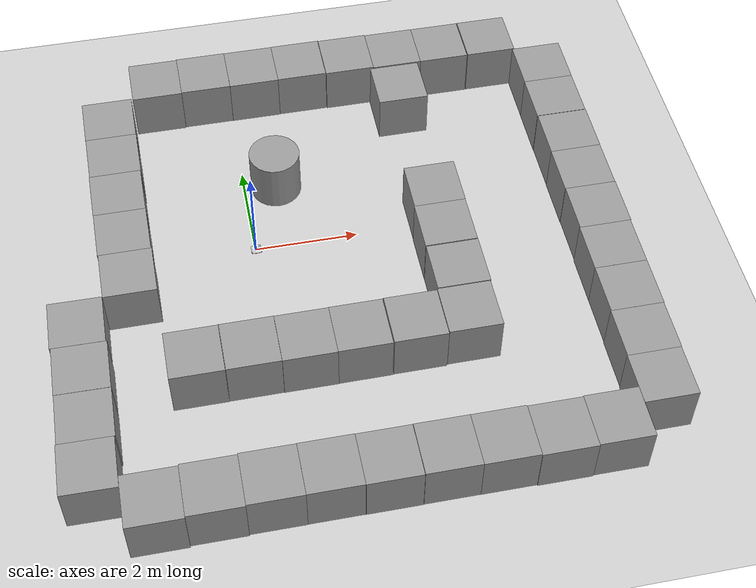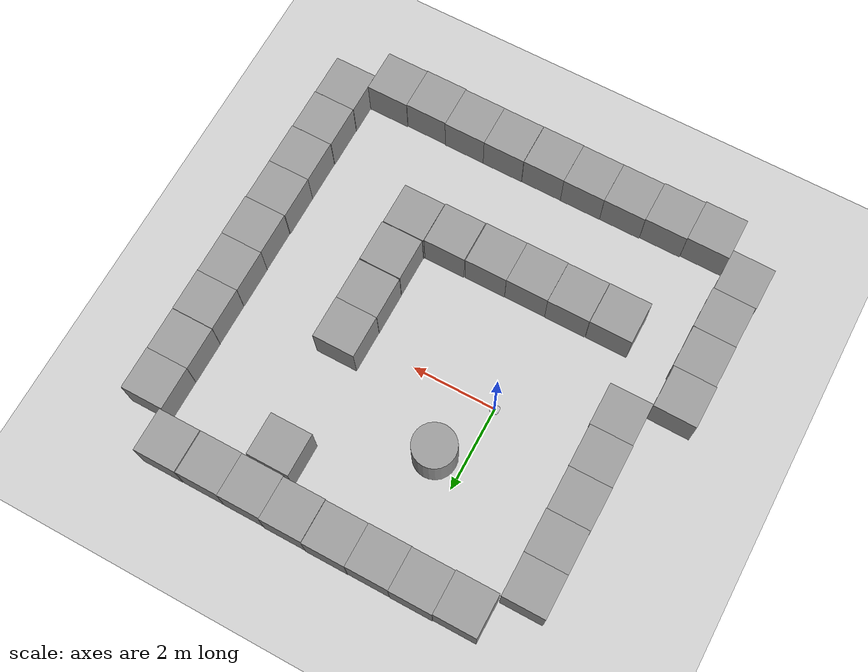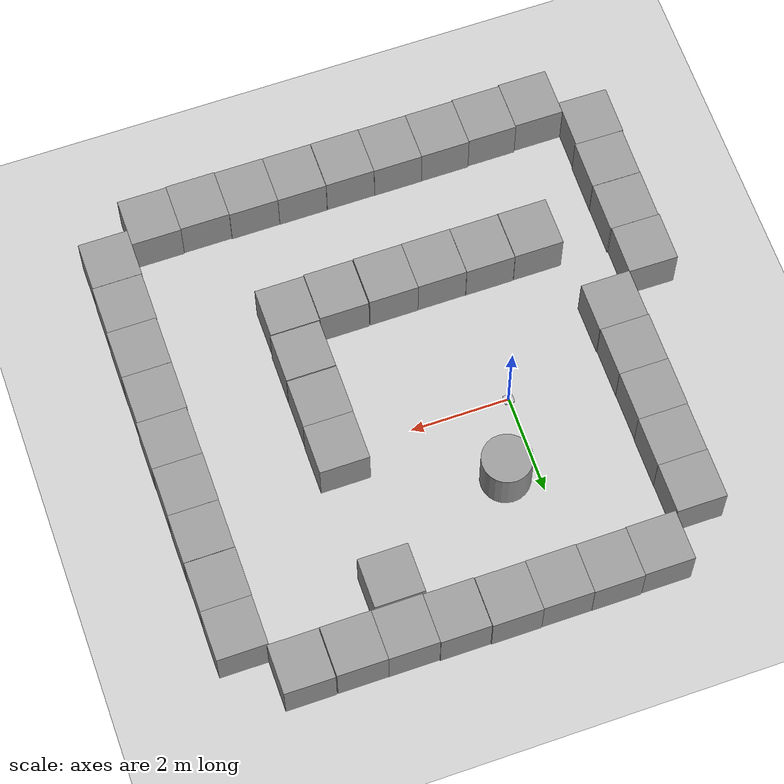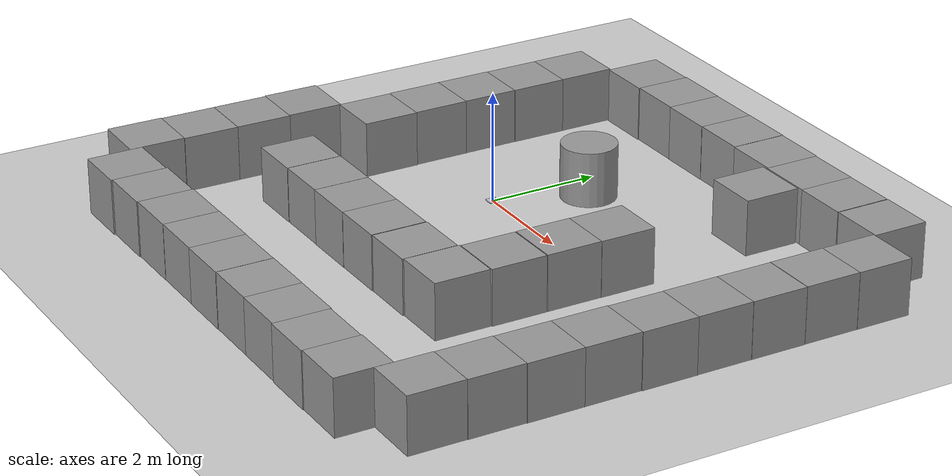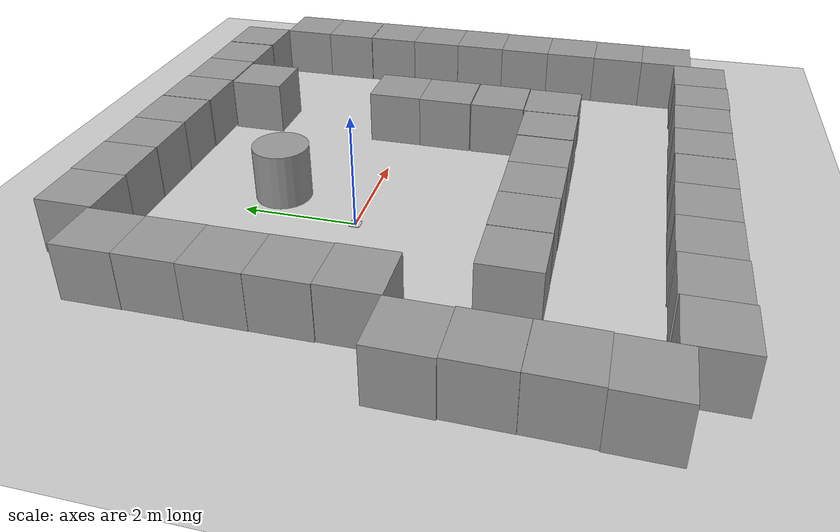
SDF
<sdf version="1.7">
 <world name="default">
  <light name="sun" type="directional">
   <pose>0 0 10 0 -0 0</pose>
   <diffuse>0.8 0.8 0.8 1</diffuse>
   <specular>0.2 0.2 0.2 1</specular>
   <attenuation>
    <range>1000</range>
    <constant>0.9</constant>
    <linear>0.01</linear>
    <quadratic>0.001</quadratic>
   </attenuation>
   <direction>-0.5 0.1 -0.9</direction>
   <spot><inner_angle>0</inner_angle><outer_angle>0</outer_angle><falloff>0</falloff></spot>
  </light>
  <model name="ground_plane">
   <static>1</static>
   <link name="link">
    <collision name="collision">
     <geometry><plane><normal>0 0 1</normal><size>100 100</size></plane></geometry>
     <surface>
      <contact><collide_bitmask>65535</collide_bitmask></contact>
      <friction><ode><mu>100</mu><mu2>50</mu2></ode></friction>
     </surface>
    </collision>
    <visual name="visual">
     <cast_shadows>0</cast_shadows>
     <geometry><plane><normal>0 0 1</normal><size>100 100</size></plane></geometry>
     <material>
      <script><uri>file://media/materials/scripts/gazebo.material</uri><name>Gazebo/Grey</name></script>
     </material>
    </visual>
   </link>
  </model>
  <gravity>0 0 -9.8</gravity>
  <magnetic_field>6e-06 2.3e-05 -4.2e-05</magnetic_field>
  <atmosphere type="adiabatic"/>
  <physics type="ode">
   <max_step_size>0.001</max_step_size>
   <real_time_factor>1</real_time_factor>
   <real_time_update_rate>1000</real_time_update_rate>
  </physics>
  <scene><ambient>0.4 0.4 0.4 1</ambient><background>0.7 0.7 0.7 1</background><shadows>1</shadows></scene>
  <spherical_coordinates>
   <surface_model>EARTH_WGS84</surface_model>
   <latitude_deg>0</latitude_deg>
   <longitude_deg>0</longitude_deg>
   <elevation>0</elevation>
   <heading_deg>0</heading_deg>
  </spherical_coordinates>
  <model name="fwomni">
   <link name="base_footprint">
    <inertial>
     <pose>0.002014 -0 0.005878 0 -0 0</pose>
     <mass>3.04689</mass>
     <inertia>
      <ixx>0.00914958</ixx>
      <ixy>-2.00784e-20</ixy>
      <ixz>-0.000169029</ixz>
      <iyy>0.00953652</iyy>
      <iyz>-2.13965e-20</iyz>
      <izz>0.0183689</izz>
     </inertia>
    </inertial>
    <collision name="base_footprint_fixed_joint_lump__base_link_collision">
     <pose>0 0 0.005 0 -0 0</pose>
     <geometry>
      <mesh>
       <scale>0.001 0.001 0.001</scale>
       <uri>/home/dell/Desktop/noetic/fwomni_ws/src/fwomni/meshes/base_link.stl</uri>
      </mesh>
     </geometry>
     <surface><friction><ode><mu>0.2</mu><mu2>0.2</mu2></ode></friction></surface>
    </collision>
    <collision name="base_footprint_fixed_joint_lump__rplidar_collision_1">
     <pose>0 0 0.045 0 -0 0</pose>
     <geometry>
      <mesh>
       <scale>0.001 0.001 0.001</scale>
       <uri>/home/dell/Desktop/noetic/fwomni_ws/src/fwomni/meshes/rplidar.stl</uri>
      </mesh>
     </geometry>
     <surface><friction><ode><mu>0.2</mu><mu2>0.2</mu2></ode></friction></surface>
    </collision>
    <visual name="base_footprint_fixed_joint_lump__base_link_visual">
     <pose>0 0 0.005 0 -0 0</pose>
     <geometry>
      <mesh>
       <scale>0.001 0.001 0.001</scale>
       <uri>/home/dell/Desktop/noetic/fwomni_ws/src/fwomni/meshes/base_link.stl</uri>
      </mesh>
     </geometry>
     <material>
      <script><name>Gazebo/Silver</name><uri>file://media/materials/scripts/gazebo.material</uri></script>
     </material>
    </visual>
    <visual name="base_footprint_fixed_joint_lump__rplidar_visual_1">
     <pose>0 0 0.045 0 -0 0</pose>
     <geometry>
      <mesh>
       <scale>0.001 0.001 0.001</scale>
       <uri>/home/dell/Desktop/noetic/fwomni_ws/src/fwomni/meshes/rplidar.stl</uri>
      </mesh>
     </geometry>
     <material>
      <script><name>Gazebo/Silver</name><uri>file://media/materials/scripts/gazebo.material</uri></script>
     </material>
    </visual>
    <self_collide>1</self_collide>
    <sensor name="head_hokuyo_sensor" type="ray">
     <visualize>0</visualize>
     <update_rate>20</update_rate>
     <ray>
      <scan>
       <horizontal>
        <samples>1400</samples>
        <resolution>1</resolution>
        <min_angle>-3.14159</min_angle>
        <max_angle>3.14159</max_angle>
       </horizontal>
       <vertical><samples>1</samples><min_angle>0</min_angle><max_angle>0</max_angle></vertical>
      </scan>
      <range><min>0.05</min><max>12</max><resolution>0.01</resolution></range>
      <noise><type>gaussian</type><mean>0</mean><stddev>0.01</stddev></noise>
     </ray>
     <plugin name="gazebo_ros_head_hokuyo_controller" filename="libgazebo_ros_laser.so">
      <topicName>laser/scan</topicName>
      <frameName>rplidar</frameName>
      <robotNamespace>/</robotNamespace>
     </plugin>
     <pose>0.065 0 0.07 0 -0 0</pose>
    </sensor>
   </link>
   <joint name="Cont1" type="revolute">
    <pose relative_to="base_footprint">0.085328 -0.085328 0.01 0 -0 0.785398</pose>
    <parent>base_footprint</parent>
    <child>front_right</child>
    <axis>
     <xyz>0 1 0</xyz>
     <limit><lower>-1e+16</lower><upper>1e+16</upper></limit>
     <dynamics><spring_reference>0</spring_reference><spring_stiffness>0</spring_stiffness></dynamics>
    </axis>
   </joint>
   <link name="front_right">
    <pose relative_to="Cont1">0 0 0 0 -0 0</pose>
    <inertial>
     <pose>0.003 -0 0 0 -0 0</pose>
     <mass>0.0147969</mass>
     <inertia><ixx>0</ixx><ixy>0</ixy><ixz>0</ixz><iyy>1e-06</iyy><iyz>0</iyz><izz>0</izz></inertia>
    </inertial>
    <collision name="front_right_collision">
     <pose>0 0 0 0 0 -1.5708</pose>
     <geometry>
      <mesh>
       <scale>0.001 0.001 0.001</scale>
       <uri>/home/dell/Desktop/noetic/fwomni_ws/src/fwomni/meshes/wheel.stl</uri>
      </mesh>
     </geometry>
     <surface><friction><ode><mu>0.2</mu><mu2>0.2</mu2></ode></friction></surface>
    </collision>
    <visual name="front_right_visual">
     <pose>0 0 0 0 0 -1.5708</pose>
     <geometry>
      <mesh>
       <scale>0.001 0.001 0.001</scale>
       <uri>/home/dell/Desktop/noetic/fwomni_ws/src/fwomni/meshes/wheel.stl</uri>
      </mesh>
     </geometry>
     <material>
      <script><name>Gazebo/Silver</name><uri>file://media/materials/scripts/gazebo.material</uri></script>
     </material>
    </visual>
    <self_collide>1</self_collide>
   </link>
   <joint name="Cont2" type="revolute">
    <pose relative_to="base_footprint">0.085328 0.085328 0.01 0 -0 2.35619</pose>
    <parent>base_footprint</parent>
    <child>front_left</child>
    <axis>
     <xyz>0 1 0</xyz>
     <limit><lower>-1e+16</lower><upper>1e+16</upper></limit>
     <dynamics><spring_reference>0</spring_reference><spring_stiffness>0</spring_stiffness></dynamics>
    </axis>
   </joint>
   <link name="front_left">
    <pose relative_to="Cont2">0 0 0 0 -0 0</pose>
    <inertial>
     <pose>0.003 -0 0 0 -0 0</pose>
     <mass>0.0147969</mass>
     <inertia><ixx>0</ixx><ixy>0</ixy><ixz>0</ixz><iyy>1e-06</iyy><iyz>0</iyz><izz>0</izz></inertia>
    </inertial>
    <collision name="front_left_collision">
     <pose>0 0 0 0 0 -1.5708</pose>
     <geometry>
      <mesh>
       <scale>0.001 0.001 0.001</scale>
       <uri>/home/dell/Desktop/noetic/fwomni_ws/src/fwomni/meshes/wheel.stl</uri>
      </mesh>
     </geometry>
     <surface><friction><ode><mu>0.2</mu><mu2>0.2</mu2></ode></friction></surface>
    </collision>
    <visual name="front_left_visual">
     <pose>0 0 0 0 0 -1.5708</pose>
     <geometry>
      <mesh>
       <scale>0.001 0.001 0.001</scale>
       <uri>/home/dell/Desktop/noetic/fwomni_ws/src/fwomni/meshes/wheel.stl</uri>
      </mesh>
     </geometry>
     <material>
      <script><name>Gazebo/Silver</name><uri>file://media/materials/scripts/gazebo.material</uri></script>
     </material>
    </visual>
    <self_collide>1</self_collide>
   </link>
   <joint name="Cont3" type="revolute">
    <pose relative_to="base_footprint">-0.085328 0.085328 0.01 0 0 -2.35619</pose>
    <parent>base_footprint</parent>
    <child>rear_left</child>
    <axis>
     <xyz>0 1 0</xyz>
     <limit><lower>-1e+16</lower><upper>1e+16</upper></limit>
     <dynamics><spring_reference>0</spring_reference><spring_stiffness>0</spring_stiffness></dynamics>
    </axis>
   </joint>
   <link name="rear_left">
    <pose relative_to="Cont3">0 0 0 0 -0 0</pose>
    <inertial>
     <pose>0.003 -0 0 0 -0 0</pose>
     <mass>0.0147969</mass>
     <inertia><ixx>0</ixx><ixy>0</ixy><ixz>0</ixz><iyy>1e-06</iyy><iyz>0</iyz><izz>0</izz></inertia>
    </inertial>
    <collision name="rear_left_collision">
     <pose>0 0 0 0 0 -1.5708</pose>
     <geometry>
      <mesh>
       <scale>0.001 0.001 0.001</scale>
       <uri>/home/dell/Desktop/noetic/fwomni_ws/src/fwomni/meshes/wheel.stl</uri>
      </mesh>
     </geometry>
     <surface><friction><ode><mu>0.2</mu><mu2>0.2</mu2></ode></friction></surface>
    </collision>
    <visual name="rear_left_visual">
     <pose>0 0 0 0 0 -1.5708</pose>
     <geometry>
      <mesh>
       <scale>0.001 0.001 0.001</scale>
       <uri>/home/dell/Desktop/noetic/fwomni_ws/src/fwomni/meshes/wheel.stl</uri>
      </mesh>
     </geometry>
     <material>
      <script><name>Gazebo/Silver</name><uri>file://media/materials/scripts/gazebo.material</uri></script>
     </material>
    </visual>
    <self_collide>1</self_collide>
   </link>
   <joint name="Cont4" type="revolute">
    <pose relative_to="base_footprint">-0.085328 -0.085328 0.01 0 0 -0.785398</pose>
    <parent>base_footprint</parent>
    <child>rear_right</child>
    <axis>
     <xyz>0 1 0</xyz>
     <limit><lower>-1e+16</lower><upper>1e+16</upper></limit>
     <dynamics><spring_reference>0</spring_reference><spring_stiffness>0</spring_stiffness></dynamics>
    </axis>
   </joint>
   <link name="rear_right">
    <pose relative_to="Cont4">0 0 0 0 -0 0</pose>
    <inertial>
     <pose>0.003 -0 0 0 -0 0</pose>
     <mass>0.0147969</mass>
     <inertia><ixx>0</ixx><ixy>0</ixy><ixz>0</ixz><iyy>1e-06</iyy><iyz>0</iyz><izz>0</izz></inertia>
    </inertial>
    <collision name="rear_right_collision">
     <pose>0 0 0 0 0 -1.5708</pose>
     <geometry>
      <mesh>
       <scale>0.001 0.001 0.001</scale>
       <uri>/home/dell/Desktop/noetic/fwomni_ws/src/fwomni/meshes/wheel.stl</uri>
      </mesh>
     </geometry>
     <surface><friction><ode><mu>0.2</mu><mu2>0.2</mu2></ode></friction></surface>
    </collision>
    <visual name="rear_right_visual">
     <pose>0 0 0 0 0 -1.5708</pose>
     <geometry>
      <mesh>
       <scale>0.001 0.001 0.001</scale>
       <uri>/home/dell/Desktop/noetic/fwomni_ws/src/fwomni/meshes/wheel.stl</uri>
      </mesh>
     </geometry>
     <material>
      <script><name>Gazebo/Silver</name><uri>file://media/materials/scripts/gazebo.material</uri></script>
     </material>
    </visual>
    <self_collide>1</self_collide>
   </link>
   <plugin name="control" filename="libgazebo_ros_control.so"><robotNamespace>/</robotNamespace></plugin>
   <static>0</static>
   <plugin name="mecanum_drive" filename="libgazebo_ros_planar_move.so">
    <commandTopic>cmd_vel</commandTopic>
    <odometryTopic>odom</odometryTopic>
    <odometryFrame>odom</odometryFrame>
    <odometryRate>100.0</odometryRate>
    <robotBaseFrame>base_footprint</robotBaseFrame>
    <publishTF>1</publishTF>
    <robotNamespace>/</robotNamespace>
   </plugin>
   <pose>8e-06 1.3e-05 -3.6e-05 0 8e-06 1.9e-05</pose>
  </model>
  <model name="unit_box">
   <pose>-0.46324 4.08463 0.499995 0 1e-05 0.000138</pose>
   <link name="link">
    <inertial>
     <mass>1</mass>
     <inertia>
      <ixx>0.166667</ixx>
      <ixy>0</ixy>
      <ixz>0</ixz>
      <iyy>0.166667</iyy>
      <iyz>0</iyz>
      <izz>0.166667</izz>
     </inertia>
    </inertial>
    <collision name="collision"><geometry><box><size>1 1 1</size></box></geometry></collision>
    <visual name="visual">
     <geometry><box><size>1 1 1</size></box></geometry>
     <material>
      <script><name>Gazebo/Grey</name><uri>file://media/materials/scripts/gazebo.material</uri></script>
     </material>
    </visual>
   </link>
  </model>
  <model name="unit_box_0">
   <pose>0.536787 4.0788 0.499995 0 -9e-06 0.000162</pose>
   <link name="link">
    <inertial>
     <mass>1</mass>
     <inertia>
      <ixx>0.166667</ixx>
      <ixy>0</ixy>
      <ixz>0</ixz>
      <iyy>0.166667</iyy>
      <iyz>0</iyz>
      <izz>0.166667</izz>
     </inertia>
    </inertial>
    <collision name="collision"><geometry><box><size>1 1 1</size></box></geometry></collision>
    <visual name="visual">
     <geometry><box><size>1 1 1</size></box></geometry>
     <material>
      <script><name>Gazebo/Grey</name><uri>file://media/materials/scripts/gazebo.material</uri></script>
     </material>
    </visual>
   </link>
  </model>
  <model name="unit_box_1">
   <pose>1.5368 4.08496 0.499995 0 1e-05 0.000162</pose>
   <link name="link">
    <inertial>
     <mass>1</mass>
     <inertia>
      <ixx>0.166667</ixx>
      <ixy>0</ixy>
      <ixz>0</ixz>
      <iyy>0.166667</iyy>
      <iyz>0</iyz>
      <izz>0.166667</izz>
     </inertia>
    </inertial>
    <collision name="collision"><geometry><box><size>1 1 1</size></box></geometry></collision>
    <visual name="visual">
     <geometry><box><size>1 1 1</size></box></geometry>
     <material>
      <script><name>Gazebo/Grey</name><uri>file://media/materials/scripts/gazebo.material</uri></script>
     </material>
    </visual>
   </link>
  </model>
  <model name="unit_box_2">
   <pose>-1.46324 4.0692 0.499995 -0 1e-05 0.000141</pose>
   <link name="link">
    <inertial>
     <mass>1</mass>
     <inertia>
      <ixx>0.166667</ixx>
      <ixy>0</ixy>
      <ixz>0</ixz>
      <iyy>0.166667</iyy>
      <iyz>0</iyz>
      <izz>0.166667</izz>
     </inertia>
    </inertial>
    <collision name="collision"><geometry><box><size>1 1 1</size></box></geometry></collision>
    <visual name="visual">
     <geometry><box><size>1 1 1</size></box></geometry>
     <material>
      <script><name>Gazebo/Grey</name><uri>file://media/materials/scripts/gazebo.material</uri></script>
     </material>
    </visual>
   </link>
  </model>
  <model name="unit_box_3">
   <pose>-2.49137 3.10413 0.499995 0 1e-05 0.000419</pose>
   <link name="link">
    <inertial>
     <mass>1</mass>
     <inertia>
      <ixx>0.166667</ixx>
      <ixy>0</ixy>
      <ixz>0</ixz>
      <iyy>0.166667</iyy>
      <iyz>0</iyz>
      <izz>0.166667</izz>
     </inertia>
    </inertial>
    <collision name="collision"><geometry><box><size>1 1 1</size></box></geometry></collision>
    <visual name="visual">
     <geometry><box><size>1 1 1</size></box></geometry>
     <material>
      <script><name>Gazebo/Grey</name><uri>file://media/materials/scripts/gazebo.material</uri></script>
     </material>
    </visual>
   </link>
  </model>
  <model name="unit_box_4">
   <pose>-2.48676 2.10413 0.499995 0 -1e-05 0.000419</pose>
   <link name="link">
    <inertial>
     <mass>1</mass>
     <inertia>
      <ixx>0.166667</ixx>
      <ixy>0</ixy>
      <ixz>0</ixz>
      <iyy>0.166667</iyy>
      <iyz>0</iyz>
      <izz>0.166667</izz>
     </inertia>
    </inertial>
    <collision name="collision"><geometry><box><size>1 1 1</size></box></geometry></collision>
    <visual name="visual">
     <geometry><box><size>1 1 1</size></box></geometry>
     <material>
      <script><name>Gazebo/Grey</name><uri>file://media/materials/scripts/gazebo.material</uri></script>
     </material>
    </visual>
   </link>
  </model>
  <model name="unit_box_5">
   <pose>-2.49419 1.10412 0.499995 1e-05 -0 0.000416</pose>
   <link name="link">
    <inertial>
     <mass>1</mass>
     <inertia>
      <ixx>0.166667</ixx>
      <ixy>0</ixy>
      <ixz>0</ixz>
      <iyy>0.166667</iyy>
      <iyz>0</iyz>
      <izz>0.166667</izz>
     </inertia>
    </inertial>
    <collision name="collision"><geometry><box><size>1 1 1</size></box></geometry></collision>
    <visual name="visual">
     <geometry><box><size>1 1 1</size></box></geometry>
     <material>
      <script><name>Gazebo/Grey</name><uri>file://media/materials/scripts/gazebo.material</uri></script>
     </material>
    </visual>
   </link>
  </model>
  <model name="unit_box_6">
   <pose>-2.4897 0.104067 0.499995 -1e-05 -0 0.000533</pose>
   <link name="link">
    <inertial>
     <mass>1</mass>
     <inertia>
      <ixx>0.166667</ixx>
      <ixy>0</ixy>
      <ixz>0</ixz>
      <iyy>0.166667</iyy>
      <iyz>0</iyz>
      <izz>0.166667</izz>
     </inertia>
    </inertial>
    <collision name="collision"><geometry><box><size>1 1 1</size></box></geometry></collision>
    <visual name="visual">
     <geometry><box><size>1 1 1</size></box></geometry>
     <material>
      <script><name>Gazebo/Grey</name><uri>file://media/materials/scripts/gazebo.material</uri></script>
     </material>
    </visual>
   </link>
  </model>
  <model name="unit_box_7">
   <pose>-2.47523 -0.895936 0.499995 -1e-05 -0 0.00054</pose>
   <link name="link">
    <inertial>
     <mass>1</mass>
     <inertia>
      <ixx>0.166667</ixx>
      <ixy>0</ixy>
      <ixz>0</ixz>
      <iyy>0.166667</iyy>
      <iyz>0</iyz>
      <izz>0.166667</izz>
     </inertia>
    </inertial>
    <collision name="collision"><geometry><box><size>1 1 1</size></box></geometry></collision>
    <visual name="visual">
     <geometry><box><size>1 1 1</size></box></geometry>
     <material>
      <script><name>Gazebo/Grey</name><uri>file://media/materials/scripts/gazebo.material</uri></script>
     </material>
    </visual>
   </link>
  </model>
  <model name="unit_box_8">
   <pose>-3.48298 -1.86942 0.499985 0 1e-05 -0.011263</pose>
   <link name="link">
    <inertial>
     <mass>1</mass>
     <inertia>
      <ixx>0.166667</ixx>
      <ixy>0</ixy>
      <ixz>0</ixz>
      <iyy>0.166667</iyy>
      <iyz>0</iyz>
      <izz>0.166667</izz>
     </inertia>
    </inertial>
    <collision name="collision"><geometry><box><size>1 1 1</size></box></geometry></collision>
    <visual name="visual">
     <geometry><box><size>1 1 1</size></box></geometry>
     <material>
      <script><name>Gazebo/Grey</name><uri>file://media/materials/scripts/gazebo.material</uri></script>
     </material>
    </visual>
   </link>
  </model>
  <model name="unit_box_9">
   <pose>-1.49025 -2.90921 0.499995 -1e-05 -0 0</pose>
   <link name="link">
    <inertial>
     <mass>1</mass>
     <inertia>
      <ixx>0.166667</ixx>
      <ixy>0</ixy>
      <ixz>0</ixz>
      <iyy>0.166667</iyy>
      <iyz>0</iyz>
      <izz>0.166667</izz>
     </inertia>
    </inertial>
    <collision name="collision"><geometry><box><size>1 1 1</size></box></geometry></collision>
    <visual name="visual">
     <geometry><box><size>1 1 1</size></box></geometry>
     <material>
      <script><name>Gazebo/Grey</name><uri>file://media/materials/scripts/gazebo.material</uri></script>
     </material>
    </visual>
   </link>
  </model>
  <model name="unit_box_10">
   <pose>-0.483742 -2.90388 0.499995 0 -1e-05 0</pose>
   <link name="link">
    <inertial>
     <mass>1</mass>
     <inertia>
      <ixx>0.166667</ixx>
      <ixy>0</ixy>
      <ixz>0</ixz>
      <iyy>0.166667</iyy>
      <iyz>0</iyz>
      <izz>0.166667</izz>
     </inertia>
    </inertial>
    <collision name="collision"><geometry><box><size>1 1 1</size></box></geometry></collision>
    <visual name="visual">
     <geometry><box><size>1 1 1</size></box></geometry>
     <material>
      <script><name>Gazebo/Grey</name><uri>file://media/materials/scripts/gazebo.material</uri></script>
     </material>
    </visual>
   </link>
  </model>
  <model name="unit_box_11">
   <pose>0.517657 -2.90891 0.499995 0 -1e-05 3e-06</pose>
   <link name="link">
    <inertial>
     <mass>1</mass>
     <inertia>
      <ixx>0.166667</ixx>
      <ixy>0</ixy>
      <ixz>0</ixz>
      <iyy>0.166667</iyy>
      <iyz>0</iyz>
      <izz>0.166667</izz>
     </inertia>
    </inertial>
    <collision name="collision"><geometry><box><size>1 1 1</size></box></geometry></collision>
    <visual name="visual">
     <geometry><box><size>1 1 1</size></box></geometry>
     <material>
      <script><name>Gazebo/Grey</name><uri>file://media/materials/scripts/gazebo.material</uri></script>
     </material>
    </visual>
   </link>
  </model>
  <model name="unit_box_12">
   <pose>1.51766 -2.90388 0.499995 0 -1e-05 1e-06</pose>
   <link name="link">
    <inertial>
     <mass>1</mass>
     <inertia>
      <ixx>0.166667</ixx>
      <ixy>0</ixy>
      <ixz>0</ixz>
      <iyy>0.166667</iyy>
      <iyz>0</iyz>
      <izz>0.166667</izz>
     </inertia>
    </inertial>
    <collision name="collision"><geometry><box><size>1 1 1</size></box></geometry></collision>
    <visual name="visual">
     <geometry><box><size>1 1 1</size></box></geometry>
     <material>
      <script><name>Gazebo/Grey</name><uri>file://media/materials/scripts/gazebo.material</uri></script>
     </material>
    </visual>
   </link>
  </model>
  <model name="unit_cylinder">
   <pose>0.635254 1.53681 0.499997 3e-06 -4e-06 0</pose>
   <link name="link">
    <inertial>
     <mass>1</mass>
     <inertia><ixx>0.145833</ixx><ixy>0</ixy><ixz>0</ixz><iyy>0.145833</iyy><iyz>0</iyz><izz>0.125</izz></inertia>
    </inertial>
    <collision name="collision">
     <geometry><cylinder><radius>0.5</radius><length>1</length></cylinder></geometry>
    </collision>
    <visual name="visual">
     <geometry><cylinder><radius>0.5</radius><length>1</length></cylinder></geometry>
     <material>
      <script><name>Gazebo/Grey</name><uri>file://media/materials/scripts/gazebo.material</uri></script>
     </material>
    </visual>
   </link>
  </model>
  <model name="unit_box_13">
   <pose>2.53498 -2.89372 0.499995 0 -1e-05 0</pose>
   <link name="link">
    <inertial>
     <mass>1</mass>
     <inertia>
      <ixx>0.166667</ixx>
      <ixy>0</ixy>
      <ixz>0</ixz>
      <iyy>0.166667</iyy>
      <iyz>0</iyz>
      <izz>0.166667</izz>
     </inertia>
    </inertial>
    <collision name="collision"><geometry><box><size>1 1 1</size></box></geometry></collision>
    <visual name="visual">
     <geometry><box><size>1 1 1</size></box></geometry>
     <material>
      <script><name>Gazebo/Grey</name><uri>file://media/materials/scripts/gazebo.material</uri></script>
     </material>
    </visual>
   </link>
  </model>
  <model name="unit_box_14">
   <pose>3.54307 -2.86957 0.499995 -1e-05 -0 0</pose>
   <link name="link">
    <inertial>
     <mass>1</mass>
     <inertia>
      <ixx>0.166667</ixx>
      <ixy>0</ixy>
      <ixz>0</ixz>
      <iyy>0.166667</iyy>
      <iyz>0</iyz>
      <izz>0.166667</izz>
     </inertia>
    </inertial>
    <collision name="collision"><geometry><box><size>1 1 1</size></box></geometry></collision>
    <visual name="visual">
     <geometry><box><size>1 1 1</size></box></geometry>
     <material>
      <script><name>Gazebo/Grey</name><uri>file://media/materials/scripts/gazebo.material</uri></script>
     </material>
    </visual>
   </link>
  </model>
  <model name="unit_box_15">
   <pose>2.54428 4.07248 0.499995 -0 1e-05 0.000417</pose>
   <link name="link">
    <inertial>
     <mass>1</mass>
     <inertia>
      <ixx>0.166667</ixx>
      <ixy>0</ixy>
      <ixz>0</ixz>
      <iyy>0.166667</iyy>
      <iyz>0</iyz>
      <izz>0.166667</izz>
     </inertia>
    </inertial>
    <collision name="collision"><geometry><box><size>1 1 1</size></box></geometry></collision>
    <visual name="visual">
     <geometry><box><size>1 1 1</size></box></geometry>
     <material>
      <script><name>Gazebo/Grey</name><uri>file://media/materials/scripts/gazebo.material</uri></script>
     </material>
    </visual>
   </link>
  </model>
  <model name="unit_box_16">
   <pose>3.54435 4.05691 0.499995 1e-05 -0 0.000532</pose>
   <link name="link">
    <inertial>
     <mass>1</mass>
     <inertia>
      <ixx>0.166667</ixx>
      <ixy>0</ixy>
      <ixz>0</ixz>
      <iyy>0.166667</iyy>
      <iyz>0</iyz>
      <izz>0.166667</izz>
     </inertia>
    </inertial>
    <collision name="collision"><geometry><box><size>1 1 1</size></box></geometry></collision>
    <visual name="visual">
     <geometry><box><size>1 1 1</size></box></geometry>
     <material>
      <script><name>Gazebo/Grey</name><uri>file://media/materials/scripts/gazebo.material</uri></script>
     </material>
    </visual>
   </link>
  </model>
  <model name="unit_box_17">
   <pose>4.54437 4.05323 0.499995 -1e-05 -0 0.00053</pose>
   <link name="link">
    <inertial>
     <mass>1</mass>
     <inertia>
      <ixx>0.166667</ixx>
      <ixy>0</ixy>
      <ixz>0</ixz>
      <iyy>0.166667</iyy>
      <iyz>0</iyz>
      <izz>0.166667</izz>
     </inertia>
    </inertial>
    <collision name="collision"><geometry><box><size>1 1 1</size></box></geometry></collision>
    <visual name="visual">
     <geometry><box><size>1 1 1</size></box></geometry>
     <material>
      <script><name>Gazebo/Grey</name><uri>file://media/materials/scripts/gazebo.material</uri></script>
     </material>
    </visual>
   </link>
  </model>
  <model name="unit_box_18">
   <pose>5.56077 4.05818 0.499995 -1e-05 -0 0</pose>
   <link name="link">
    <inertial>
     <mass>1</mass>
     <inertia>
      <ixx>0.166667</ixx>
      <ixy>0</ixy>
      <ixz>0</ixz>
      <iyy>0.166667</iyy>
      <iyz>0</iyz>
      <izz>0.166667</izz>
     </inertia>
    </inertial>
    <collision name="collision"><geometry><box><size>1 1 1</size></box></geometry></collision>
    <visual name="visual">
     <geometry><box><size>1 1 1</size></box></geometry>
     <material>
      <script><name>Gazebo/Grey</name><uri>file://media/materials/scripts/gazebo.material</uri></script>
     </material>
    </visual>
   </link>
  </model>
  <model name="unit_box_19">
   <pose>6.52034 3.04672 0.499995 0 1e-05 0</pose>
   <link name="link">
    <inertial>
     <mass>1</mass>
     <inertia>
      <ixx>0.166667</ixx>
      <ixy>0</ixy>
      <ixz>0</ixz>
      <iyy>0.166667</iyy>
      <iyz>0</iyz>
      <izz>0.166667</izz>
     </inertia>
    </inertial>
    <collision name="collision"><geometry><box><size>1 1 1</size></box></geometry></collision>
    <visual name="visual">
     <geometry><box><size>1 1 1</size></box></geometry>
     <material>
      <script><name>Gazebo/Grey</name><uri>file://media/materials/scripts/gazebo.material</uri></script>
     </material>
    </visual>
   </link>
  </model>
  <model name="unit_box_20">
   <pose>6.51666 2.04671 0.5 0 -0 0</pose>
   <link name="link">
    <inertial>
     <mass>1</mass>
     <inertia>
      <ixx>0.166667</ixx>
      <ixy>0</ixy>
      <ixz>0</ixz>
      <iyy>0.166667</iyy>
      <iyz>0</iyz>
      <izz>0.166667</izz>
     </inertia>
    </inertial>
    <collision name="collision"><geometry><box><size>1 1 1</size></box></geometry></collision>
    <visual name="visual">
     <geometry><box><size>1 1 1</size></box></geometry>
     <material>
      <script><name>Gazebo/Grey</name><uri>file://media/materials/scripts/gazebo.material</uri></script>
     </material>
    </visual>
   </link>
  </model>
  <model name="unit_box_21">
   <pose>6.52242 1.04071 0.499995 -0 -1e-05 0.000172</pose>
   <link name="link">
    <inertial>
     <mass>1</mass>
     <inertia>
      <ixx>0.166667</ixx>
      <ixy>0</ixy>
      <ixz>0</ixz>
      <iyy>0.166667</iyy>
      <iyz>0</iyz>
      <izz>0.166667</izz>
     </inertia>
    </inertial>
    <collision name="collision"><geometry><box><size>1 1 1</size></box></geometry></collision>
    <visual name="visual">
     <geometry><box><size>1 1 1</size></box></geometry>
     <material>
      <script><name>Gazebo/Grey</name><uri>file://media/materials/scripts/gazebo.material</uri></script>
     </material>
    </visual>
   </link>
  </model>
  <model name="unit_box_22">
   <pose>6.51825 0.040675 0.5 0 -0 0.00014</pose>
   <link name="link">
    <inertial>
     <mass>1</mass>
     <inertia>
      <ixx>0.166667</ixx>
      <ixy>0</ixy>
      <ixz>0</ixz>
      <iyy>0.166667</iyy>
      <iyz>0</iyz>
      <izz>0.166667</izz>
     </inertia>
    </inertial>
    <collision name="collision"><geometry><box><size>1 1 1</size></box></geometry></collision>
    <visual name="visual">
     <geometry><box><size>1 1 1</size></box></geometry>
     <material>
      <script><name>Gazebo/Grey</name><uri>file://media/materials/scripts/gazebo.material</uri></script>
     </material>
    </visual>
   </link>
  </model>
  <model name="unit_box_23">
   <pose>6.52429 -0.959333 0.5 0 -0 0.000127</pose>
   <link name="link">
    <inertial>
     <mass>1</mass>
     <inertia>
      <ixx>0.166667</ixx>
      <ixy>0</ixy>
      <ixz>0</ixz>
      <iyy>0.166667</iyy>
      <iyz>0</iyz>
      <izz>0.166667</izz>
     </inertia>
    </inertial>
    <collision name="collision"><geometry><box><size>1 1 1</size></box></geometry></collision>
    <visual name="visual">
     <geometry><box><size>1 1 1</size></box></geometry>
     <material>
      <script><name>Gazebo/Grey</name><uri>file://media/materials/scripts/gazebo.material</uri></script>
     </material>
    </visual>
   </link>
  </model>
  <model name="unit_box_24">
   <pose>3.56067 -1.85671 0.499995 0 1e-05 0</pose>
   <link name="link">
    <inertial>
     <mass>1</mass>
     <inertia>
      <ixx>0.166667</ixx>
      <ixy>0</ixy>
      <ixz>0</ixz>
      <iyy>0.166667</iyy>
      <iyz>0</iyz>
      <izz>0.166667</izz>
     </inertia>
    </inertial>
    <collision name="collision"><geometry><box><size>1 1 1</size></box></geometry></collision>
    <visual name="visual">
     <geometry><box><size>1 1 1</size></box></geometry>
     <material>
      <script><name>Gazebo/Grey</name><uri>file://media/materials/scripts/gazebo.material</uri></script>
     </material>
    </visual>
   </link>
  </model>
  <model name="unit_box_25">
   <pose>3.55859 -0.839662 0.499995 1e-05 -0 -0.000429</pose>
   <link name="link">
    <inertial>
     <mass>1</mass>
     <inertia>
      <ixx>0.166667</ixx>
      <ixy>0</ixy>
      <ixz>0</ixz>
      <iyy>0.166667</iyy>
      <iyz>0</iyz>
      <izz>0.166667</izz>
     </inertia>
    </inertial>
    <collision name="collision"><geometry><box><size>1 1 1</size></box></geometry></collision>
    <visual name="visual">
     <geometry><box><size>1 1 1</size></box></geometry>
     <material>
      <script><name>Gazebo/Grey</name><uri>file://media/materials/scripts/gazebo.material</uri></script>
     </material>
    </visual>
   </link>
  </model>
  <model name="unit_box_26">
   <pose>3.56491 0.160351 0.499995 1e-05 -0 -0.000438</pose>
   <link name="link">
    <inertial>
     <mass>1</mass>
     <inertia>
      <ixx>0.166667</ixx>
      <ixy>0</ixy>
      <ixz>0</ixz>
      <iyy>0.166667</iyy>
      <iyz>0</iyz>
      <izz>0.166667</izz>
     </inertia>
    </inertial>
    <collision name="collision"><geometry><box><size>1 1 1</size></box></geometry></collision>
    <visual name="visual">
     <geometry><box><size>1 1 1</size></box></geometry>
     <material>
      <script><name>Gazebo/Grey</name><uri>file://media/materials/scripts/gazebo.material</uri></script>
     </material>
    </visual>
   </link>
  </model>
  <model name="unit_box_27">
   <pose>3.46718 3.02835 0.499995 0 -1e-05 0</pose>
   <link name="link">
    <inertial>
     <mass>1</mass>
     <inertia>
      <ixx>0.166667</ixx>
      <ixy>0</ixy>
      <ixz>0</ixz>
      <iyy>0.166667</iyy>
      <iyz>0</iyz>
      <izz>0.166667</izz>
     </inertia>
    </inertial>
    <collision name="collision"><geometry><box><size>1 1 1</size></box></geometry></collision>
    <visual name="visual">
     <geometry><box><size>1 1 1</size></box></geometry>
     <material>
      <script><name>Gazebo/Grey</name><uri>file://media/materials/scripts/gazebo.material</uri></script>
     </material>
    </visual>
   </link>
  </model>
  <model name="unit_box_28">
   <pose>6.5103 -1.95934 0.499995 0 -1e-05 0.000121</pose>
   <link name="link">
    <inertial>
     <mass>1</mass>
     <inertia>
      <ixx>0.166667</ixx>
      <ixy>0</ixy>
      <ixz>0</ixz>
      <iyy>0.166667</iyy>
      <iyz>0</iyz>
      <izz>0.166667</izz>
     </inertia>
    </inertial>
    <collision name="collision"><geometry><box><size>1 1 1</size></box></geometry></collision>
    <visual name="visual">
     <geometry><box><size>1 1 1</size></box></geometry>
     <material>
      <script><name>Gazebo/Grey</name><uri>file://media/materials/scripts/gazebo.material</uri></script>
     </material>
    </visual>
   </link>
  </model>
  <model name="unit_box_29">
   <pose>6.51027 -2.95946 0.499995 0 -1e-05 0.000325</pose>
   <link name="link">
    <inertial>
     <mass>1</mass>
     <inertia>
      <ixx>0.166667</ixx>
      <ixy>0</ixy>
      <ixz>0</ixz>
      <iyy>0.166667</iyy>
      <iyz>0</iyz>
      <izz>0.166667</izz>
     </inertia>
    </inertial>
    <collision name="collision"><geometry><box><size>1 1 1</size></box></geometry></collision>
    <visual name="visual">
     <geometry><box><size>1 1 1</size></box></geometry>
     <material>
      <script><name>Gazebo/Grey</name><uri>file://media/materials/scripts/gazebo.material</uri></script>
     </material>
    </visual>
   </link>
  </model>
  <model name="unit_box_30">
   <pose>6.50045 -3.95953 0.499995 -1e-05 0 0.000367</pose>
   <link name="link">
    <inertial>
     <mass>1</mass>
     <inertia>
      <ixx>0.166667</ixx>
      <ixy>0</ixy>
      <ixz>0</ixz>
      <iyy>0.166667</iyy>
      <iyz>0</iyz>
      <izz>0.166667</izz>
     </inertia>
    </inertial>
    <collision name="collision"><geometry><box><size>1 1 1</size></box></geometry></collision>
    <visual name="visual">
     <geometry><box><size>1 1 1</size></box></geometry>
     <material>
      <script><name>Gazebo/Grey</name><uri>file://media/materials/scripts/gazebo.material</uri></script>
     </material>
    </visual>
   </link>
  </model>
  <model name="unit_box_31">
   <pose>6.4914 -4.95963 0.499995 -1e-05 0 0.000367</pose>
   <link name="link">
    <inertial>
     <mass>1</mass>
     <inertia>
      <ixx>0.166667</ixx>
      <ixy>0</ixy>
      <ixz>0</ixz>
      <iyy>0.166667</iyy>
      <iyz>0</iyz>
      <izz>0.166667</izz>
     </inertia>
    </inertial>
    <collision name="collision"><geometry><box><size>1 1 1</size></box></geometry></collision>
    <visual name="visual">
     <geometry><box><size>1 1 1</size></box></geometry>
     <material>
      <script><name>Gazebo/Grey</name><uri>file://media/materials/scripts/gazebo.material</uri></script>
     </material>
    </visual>
   </link>
  </model>
  <model name="unit_box_32">
   <pose>5.49083 -5.62834 0.499995 0 -1e-05 -0.001154</pose>
   <link name="link">
    <inertial>
     <mass>1</mass>
     <inertia>
      <ixx>0.166667</ixx>
      <ixy>0</ixy>
      <ixz>0</ixz>
      <iyy>0.166667</iyy>
      <iyz>0</iyz>
      <izz>0.166667</izz>
     </inertia>
    </inertial>
    <collision name="collision"><geometry><box><size>1 1 1</size></box></geometry></collision>
    <visual name="visual">
     <geometry><box><size>1 1 1</size></box></geometry>
     <material>
      <script><name>Gazebo/Grey</name><uri>file://media/materials/scripts/gazebo.material</uri></script>
     </material>
    </visual>
   </link>
  </model>
  <model name="unit_box_33">
   <pose>4.49082 -5.64223 0.499995 0 1e-05 -0.001155</pose>
   <link name="link">
    <inertial>
     <mass>1</mass>
     <inertia>
      <ixx>0.166667</ixx>
      <ixy>0</ixy>
      <ixz>0</ixz>
      <iyy>0.166667</iyy>
      <iyz>0</iyz>
      <izz>0.166667</izz>
     </inertia>
    </inertial>
    <collision name="collision"><geometry><box><size>1 1 1</size></box></geometry></collision>
    <visual name="visual">
     <geometry><box><size>1 1 1</size></box></geometry>
     <material>
      <script><name>Gazebo/Grey</name><uri>file://media/materials/scripts/gazebo.material</uri></script>
     </material>
    </visual>
   </link>
  </model>
  <model name="unit_box_34">
   <pose>3.49083 -5.62514 0.5 -0 -0 -0.001155</pose>
   <link name="link">
    <inertial>
     <mass>1</mass>
     <inertia>
      <ixx>0.166667</ixx>
      <ixy>0</ixy>
      <ixz>0</ixz>
      <iyy>0.166667</iyy>
      <iyz>0</iyz>
      <izz>0.166667</izz>
     </inertia>
    </inertial>
    <collision name="collision"><geometry><box><size>1 1 1</size></box></geometry></collision>
    <visual name="visual">
     <geometry><box><size>1 1 1</size></box></geometry>
     <material>
      <script><name>Gazebo/Grey</name><uri>file://media/materials/scripts/gazebo.material</uri></script>
     </material>
    </visual>
   </link>
  </model>
  <model name="unit_box_35">
   <pose>2.49079 -5.62047 0.5 0 -0 -0.001237</pose>
   <link name="link">
    <inertial>
     <mass>1</mass>
     <inertia>
      <ixx>0.166667</ixx>
      <ixy>0</ixy>
      <ixz>0</ixz>
      <iyy>0.166667</iyy>
      <iyz>0</iyz>
      <izz>0.166667</izz>
     </inertia>
    </inertial>
    <collision name="collision"><geometry><box><size>1 1 1</size></box></geometry></collision>
    <visual name="visual">
     <geometry><box><size>1 1 1</size></box></geometry>
     <material>
      <script><name>Gazebo/Grey</name><uri>file://media/materials/scripts/gazebo.material</uri></script>
     </material>
    </visual>
   </link>
  </model>
  <model name="unit_box_36">
   <pose>1.48543 -5.62411 0.499995 0 1e-05 -0.001531</pose>
   <link name="link">
    <inertial>
     <mass>1</mass>
     <inertia>
      <ixx>0.166667</ixx>
      <ixy>0</ixy>
      <ixz>0</ixz>
      <iyy>0.166667</iyy>
      <iyz>0</iyz>
      <izz>0.166667</izz>
     </inertia>
    </inertial>
    <collision name="collision"><geometry><box><size>1 1 1</size></box></geometry></collision>
    <visual name="visual">
     <geometry><box><size>1 1 1</size></box></geometry>
     <material>
      <script><name>Gazebo/Grey</name><uri>file://media/materials/scripts/gazebo.material</uri></script>
     </material>
    </visual>
   </link>
  </model>
  <model name="unit_box_37">
   <pose>0.485419 -5.61782 0.499995 0 -1e-05 -0.001525</pose>
   <link name="link">
    <inertial>
     <mass>1</mass>
     <inertia>
      <ixx>0.166667</ixx>
      <ixy>0</ixy>
      <ixz>0</ixz>
      <iyy>0.166667</iyy>
      <iyz>0</iyz>
      <izz>0.166667</izz>
     </inertia>
    </inertial>
    <collision name="collision"><geometry><box><size>1 1 1</size></box></geometry></collision>
    <visual name="visual">
     <geometry><box><size>1 1 1</size></box></geometry>
     <material>
      <script><name>Gazebo/Grey</name><uri>file://media/materials/scripts/gazebo.material</uri></script>
     </material>
    </visual>
   </link>
  </model>
  <model name="unit_box_38">
   <pose>-3.47206 -2.86976 0.499995 1e-05 -0 -0.011544</pose>
   <link name="link">
    <inertial>
     <mass>1</mass>
     <inertia>
      <ixx>0.166667</ixx>
      <ixy>0</ixy>
      <ixz>0</ixz>
      <iyy>0.166667</iyy>
      <iyz>0</iyz>
      <izz>0.166667</izz>
     </inertia>
    </inertial>
    <collision name="collision"><geometry><box><size>1 1 1</size></box></geometry></collision>
    <visual name="visual">
     <geometry><box><size>1 1 1</size></box></geometry>
     <material>
      <script><name>Gazebo/Grey</name><uri>file://media/materials/scripts/gazebo.material</uri></script>
     </material>
    </visual>
   </link>
  </model>
  <model name="unit_box_39">
   <pose>-3.47963 -3.8716 0.499995 1e-05 -0 -0.013093</pose>
   <link name="link">
    <inertial>
     <mass>1</mass>
     <inertia>
      <ixx>0.166667</ixx>
      <ixy>0</ixy>
      <ixz>0</ixz>
      <iyy>0.166667</iyy>
      <iyz>0</iyz>
      <izz>0.166667</izz>
     </inertia>
    </inertial>
    <collision name="collision"><geometry><box><size>1 1 1</size></box></geometry></collision>
    <visual name="visual">
     <geometry><box><size>1 1 1</size></box></geometry>
     <material>
      <script><name>Gazebo/Grey</name><uri>file://media/materials/scripts/gazebo.material</uri></script>
     </material>
    </visual>
   </link>
  </model>
  <model name="unit_box_41">
   <pose>-0.514793 -5.62026 0.499995 0 9e-06 -0.001733</pose>
   <link name="link">
    <inertial>
     <mass>1</mass>
     <inertia>
      <ixx>0.166667</ixx>
      <ixy>0</ixy>
      <ixz>0</ixz>
      <iyy>0.166667</iyy>
      <iyz>0</iyz>
      <izz>0.166667</izz>
     </inertia>
    </inertial>
    <collision name="collision"><geometry><box><size>1 1 1</size></box></geometry></collision>
    <visual name="visual">
     <geometry><box><size>1 1 1</size></box></geometry>
     <material>
      <script><name>Gazebo/Grey</name><uri>file://media/materials/scripts/gazebo.material</uri></script>
     </material>
    </visual>
   </link>
  </model>
  <model name="unit_box_42">
   <pose>-1.51484 -5.6378 0.499995 0 -1e-05 -0.001735</pose>
   <link name="link">
    <inertial>
     <mass>1</mass>
     <inertia>
      <ixx>0.166667</ixx>
      <ixy>0</ixy>
      <ixz>0</ixz>
      <iyy>0.166667</iyy>
      <iyz>0</iyz>
      <izz>0.166667</izz>
     </inertia>
    </inertial>
    <collision name="collision"><geometry><box><size>1 1 1</size></box></geometry></collision>
    <visual name="visual">
     <geometry><box><size>1 1 1</size></box></geometry>
     <material>
      <script><name>Gazebo/Grey</name><uri>file://media/materials/scripts/gazebo.material</uri></script>
     </material>
    </visual>
   </link>
  </model>
  <model name="unit_box_40">
   <pose>-2.515 -5.66282 0.499995 0 -1e-05 -0.001793</pose>
   <link name="link">
    <inertial>
     <mass>1</mass>
     <inertia>
      <ixx>0.166667</ixx>
      <ixy>0</ixy>
      <ixz>0</ixz>
      <iyy>0.166667</iyy>
      <iyz>0</iyz>
      <izz>0.166667</izz>
     </inertia>
    </inertial>
    <collision name="collision"><geometry><box><size>1 1 1</size></box></geometry></collision>
    <visual name="visual">
     <geometry><box><size>1 1 1</size></box></geometry>
     <material>
      <script><name>Gazebo/Grey</name><uri>file://media/materials/scripts/gazebo.material</uri></script>
     </material>
    </visual>
   </link>
  </model>
  <model name="unit_box_43">
   <pose>-3.51045 -4.87129 0.499995 -0 1e-05 -0.01307</pose>
   <link name="link">
    <inertial>
     <mass>1</mass>
     <inertia>
      <ixx>0.166667</ixx>
      <ixy>0</ixy>
      <ixz>0</ixz>
      <iyy>0.166667</iyy>
      <iyz>0</iyz>
      <izz>0.166667</izz>
     </inertia>
    </inertial>
    <collision name="collision"><geometry><box><size>1 1 1</size></box></geometry></collision>
    <visual name="visual">
     <geometry><box><size>1 1 1</size></box></geometry>
     <material>
      <script><name>Gazebo/Grey</name><uri>file://media/materials/scripts/gazebo.material</uri></script>
     </material>
    </visual>
   </link>
  </model>
 </world>
</sdf>
